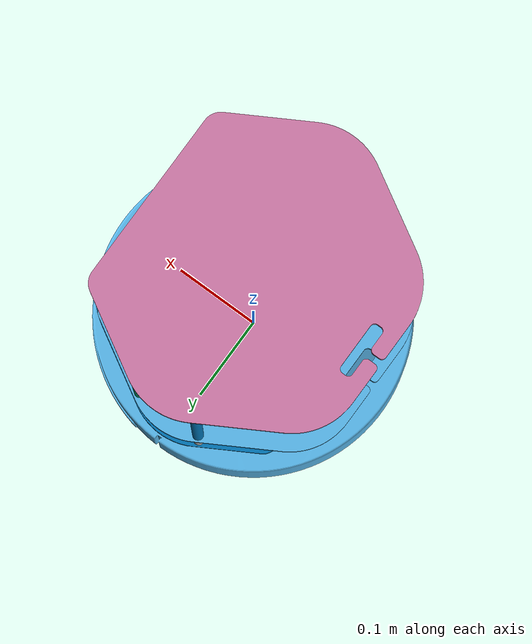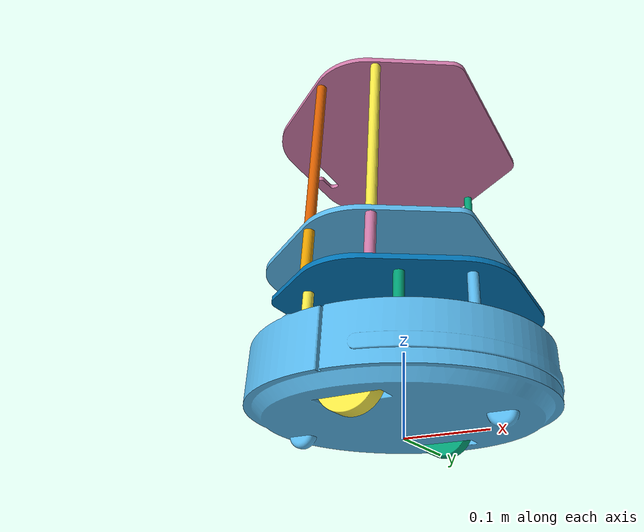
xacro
<?xml version="1.0"?>

<robot name="turtlebot_system" xmlns:xacro="http://ros.org/wiki/xacro">

  <xacro:include filename="$(find turtlebot_description)/urdf/turtlebot_common_library.urdf.xacro" />
  <xacro:include filename="$(find kobuki_description)/urdf/kobuki.urdf.xacro" />
  <xacro:include filename="$(find turtlebot_description)/urdf/stacks/hexagons.urdf.xacro"/>
  <xacro:include filename="$(find turtlebot_description)/urdf/lidar.xacro"/>

  <xacro:kobuki/>
  <xacro:stack_hexagons parent="base_link"/>
  <xacro:rplidar/>

  <gazebo>
    <plugin filename="libignition-gazebo-joint-state-publisher-system.so"
      name="ignition::gazebo::systems::JointStatePublisher"/>

      <plugin filename="ignition-gazebo-sensors-system"
        name="ignition::gazebo::systems::Sensors">
      </plugin>
  </gazebo>
</robot>

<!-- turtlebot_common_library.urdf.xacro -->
<!--
  The common turtlebot library of xacros for easy reference
 -->
<robot xmlns:xacro="http://ros.org/wiki/xacro">
  <!-- General -->
  <xacro:include filename="$(find turtlebot_description)/urdf/common_properties.urdf.xacro"/>
</robot>

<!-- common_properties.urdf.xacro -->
<robot name="xacro_properties" xmlns:xacro="http://ros.org/wiki/xacro">
  <xacro:property name="M_PI" value="3.1415926535897931" />
  <xacro:property name="material_white">
    <material name="white">
      <color rgba="1 1 1 1"/>
    </material>
  </xacro:property>
  <xacro:property name="material_grey">
    <material name="grey">
      <color rgba="0.5 0.5 0.5 1"/>
    </material>
  </xacro:property>
  <xacro:property name="material_light_grey">
    <material name="light_grey">
      <color rgba="0.6 0.6 0.6 1"/>
    </material>
  </xacro:property>
  <xacro:property name="material_dark_grey">
    <material name="dark_grey">
      <color rgba="0.3 0.3 0.3 1"/>
    </material>
  </xacro:property>
  <xacro:property name="material_black">
    <material name="black">
      <color rgba="0.1 0.1 0.1 1"/>
    </material>
  </xacro:property>
  <xacro:property name="material_red">
    <material name="red">
      <color rgba="1 0 0 1"/>
    </material>
  </xacro:property>
  <xacro:property name="material_green">
    <material name="green">
      <color rgba="0.0 0.8 0.0 1"/>
    </material>
  </xacro:property>
  <xacro:property name="material_blue">
    <material name="blue">
      <color rgba="0.0 0.0 1.0 1"/>
    </material>
  </xacro:property>
  <xacro:property name="material_grey_blue">
    <material name="grey_blue">
      <color rgba="0.4 0.4 1.0 1"/>
    </material>
  </xacro:property>
  <xacro:property name="material_orange">
    <material name="orange">
      <color rgba="1.0 0.7 0.0 1"/>
    </material>
  </xacro:property>
</robot>

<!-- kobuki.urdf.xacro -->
<robot name="kobuki" xmlns:xacro="http://ros.org/wiki/xacro">
  <xacro:include filename="$(find kobuki_description)/urdf/common_properties.urdf.xacro"/>
  <xacro:include filename="$(find kobuki_description)/urdf/drive_gazebo.xacro"/>

  <!-- Xacro properties -->
  <xacro:property name="M_SCALE" value="0.001"/>

  <!-- Kobuki -->
  <xacro:macro name="kobuki">
    <link name="base_footprint"/>
    <joint name="base_joint" type="fixed">
      <origin xyz="0 0 0.0102" rpy="0 0 0" />
      <parent link="base_footprint"/>
      <child link="base_link" />
    </joint>
    <link name="base_link">
      <visual>
        <geometry>
          <!-- new mesh -->
          <mesh filename="file://$(find kobuki_description)/meshes/main_body.dae"/>
        </geometry>
        <origin xyz="0.001 0 0.05199" rpy="0 0 0"/>
      </visual>
      <collision>
        <geometry>
          <mesh filename="file://$(find kobuki_description)/meshes/main_body.dae"/>
        </geometry>
        <origin xyz="0.0 0 0.05949" rpy="0 0 0"/>
      </collision>
      <inertial>
        <mass value="6.5"/> <!-- 2.4/2.6 kg for small/big battery pack -->
        <origin xyz="0 0 0"/>
        <inertia ixx="0.0001" ixy="0.0" ixz="0.0"
                 iyy="0.0001" iyz="0.0"
                 izz="0.0001" />
      </inertial>
    </link>

    <joint name="wheel_left_joint" type="continuous">
      <parent link="base_link"/>
      <child link="wheel_left_link"/>
      <origin xyz="0.00 ${0.23/2} 0.0250" rpy="${-M_PI/2} 0 0"/>
      <axis xyz="0 0 1"/>
    </joint>
    <link name="wheel_left_link">
      <visual>
        <geometry>
          <mesh filename="file://$(find kobuki_description)/meshes/wheel.dae"/>
        </geometry>
        <origin xyz="0 0 0" rpy="0 0 0"/>
      </visual>
      <collision>
        <geometry>
          <mesh filename="file://$(find kobuki_description)/meshes/wheel.dae"/>
        </geometry>
        <origin rpy="0 0 0" xyz="0 0 0"/>
      </collision>
      <inertial>
        <mass value="0.05" />
        <origin xyz="0 0 0" />
        <inertia ixx="0.001" ixy="0.0" ixz="0.0"
                 iyy="0.001" iyz="0.0"
                 izz="0.001" />
      </inertial>
    </link>

    <joint name="wheel_right_joint" type="continuous">
      <parent link="base_link"/>
      <child link="wheel_right_link"/>
      <origin xyz="0.00 -${0.23/2} 0.0250" rpy="${-M_PI/2} 0 0"/>
      <axis xyz="0 0 1"/>
    </joint>
    <link name="wheel_right_link">
      <visual>
        <geometry>
          <mesh filename="file://$(find kobuki_description)/meshes/wheel.dae"/>
        </geometry>
        <origin xyz="0 0 0" rpy="0 0 0"/>
      </visual>
      <collision>
        <geometry>
          <mesh filename="file://$(find kobuki_description)/meshes/wheel.dae"/>
        </geometry>
        <origin rpy="0 0 0" xyz="0 0 0"/>
      </collision>
      <inertial>
        <mass value="0.05" />
        <origin xyz="0 0 0" />
        <inertia ixx="0.001" ixy="0.0" ixz="0.0"
                 iyy="0.001" iyz="0.0"
                 izz="0.001" />
      </inertial>
    </link>

    <joint name="caster_front_joint" type="fixed">
      <parent link="base_link"/>
      <child link="caster_front_link"/>
      <origin xyz="0.115 0.0 0.007" rpy="${-M_PI/2} 0 0"/>
    </joint>
    <link name="caster_front_link">
      <collision>
        <geometry>
          <cylinder length="0.0176" radius="0.017"/>
        </geometry>
        <origin rpy="0 0 0" xyz="0 0 0"/>
      </collision>
      <inertial>
        <mass value="0.05" />
        <origin xyz="0 0 0" />
        <inertia ixx="0.001" ixy="0.0" ixz="0.0"
                 iyy="0.001" iyz="0.0"
                 izz="0.001" />
      </inertial>
    </link>

    <joint name="caster_back_joint" type="fixed">
      <parent link="base_link"/>
      <child link="caster_back_link"/>
      <origin xyz="-0.135 0.0 0.009" rpy="${-M_PI/2} 0 0"/>
    </joint>
    <link name="caster_back_link">
      <collision>
        <geometry>
          <cylinder length="0.0176" radius="0.017"/>
        </geometry>
        <origin rpy="0 0 0" xyz="0 0 0"/>
      </collision>
      <inertial>
        <mass value="0.05" />
        <origin xyz="0 0 0" />
        <inertia ixx="0.001" ixy="0.0" ixz="0.0"
                 iyy="0.001" iyz="0.0"
                 izz="0.001" />
      </inertial>
    </link>

    <xacro:drive_gazebo/>

  </xacro:macro>
</robot>

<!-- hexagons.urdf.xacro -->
<!--
  Hexagon stacks
 -->
<robot name="stack_hexagons" xmlns:xacro="http://ros.org/wiki/xacro">
  <xacro:include filename="$(find turtlebot_description)/urdf/common_properties.urdf.xacro"/>

  <!-- Xacro properties -->
  <xacro:property name="M_SCALE" value="0.001"/>

  <!-- Xacro macros -->
  <!-- Pole macros -->
  <xacro:macro name="stack_bottom_pole" params="parent number x_loc y_loc z_loc roll=0.0 pitch=0.0 yaw=0.0">
    <joint name="pole_bottom_${number}_joint" type="fixed">
      <origin xyz="${x_loc} ${y_loc} ${z_loc}" rpy="${roll} ${pitch} ${yaw}"/>
      <parent link="${parent}"/>
      <child link="pole_bottom_${number}_link"/>
    </joint>
    <link name="pole_bottom_${number}_link">
      <visual>
        <origin xyz="0 0 0" rpy="0 0 0"/>
        <geometry>
          <mesh filename="file://$(find turtlebot_description)/meshes/stacks/hexagons/pole_bottom.dae"/>
        </geometry>
      </visual>
      <collision>
        <origin xyz="0 0 0" rpy="0 0 0"/>
        <geometry>
          <mesh filename="file://$(find turtlebot_description)/meshes/stacks/hexagons/pole_bottom.dae"/>
        </geometry>
      </collision>
      <inertial>
        <mass value="0.008"/>
        <origin xyz="0 0 0" rpy="0 0 0"/>
        <inertia ixx="0.000001686" ixy="0.0" ixz="0.0"
                 iyy="0.000001686" iyz="0.0"
                 izz="0.000000144"/>
      </inertial>
    </link>
  </xacro:macro>

  <xacro:macro name="stack_middle_pole" params="parent number x_loc y_loc z_loc roll=0.0 pitch=0.0 yaw=0.0">
    <joint name="pole_middle_${number}_joint" type="fixed">
      <origin xyz="${x_loc} ${y_loc} ${z_loc}" rpy="${roll} ${pitch} ${yaw}" />
      <parent link="${parent}"/>
      <child link="pole_middle_${number}_link"/>
    </joint>
    <link name="pole_middle_${number}_link">
      <visual>
        <origin xyz="0 0 0" rpy="0 ${M_PI} 0"/>
        <geometry>
          <mesh filename="file://$(find turtlebot_description)/meshes/stacks/hexagons/pole_middle.dae"/>
        </geometry>
      </visual>
      <collision>
        <origin xyz="0 0 0" rpy="0 0 0"/>
        <geometry>
           <mesh filename="file://$(find turtlebot_description)/meshes/stacks/hexagons/pole_middle.dae"/>
        </geometry>
      </collision>
      <inertial>
        <mass value="0.012"/>
        <origin xyz="0 0 0"/>
        <inertia ixx="0.000003805" ixy="0.0" ixz="0.0"
                 iyy="0.000003805" iyz="0.0"
                 izz="0.000000216"/>
      </inertial>
    </link>
  </xacro:macro>

  <xacro:macro name="stack_top_pole" params="parent number x_loc y_loc z_loc roll=0.0 pitch=0.0 yaw=0.0">
    <joint name="pole_top_${number}_joint" type="fixed">
      <origin xyz="${x_loc} ${y_loc} ${z_loc}" rpy="${roll} ${pitch} ${yaw}"/>
      <parent link="${parent}"/>
      <child link="pole_top_${number}_link"/>
    </joint>
    <link name="pole_top_${number}_link">
      <visual>
        <origin xyz=" 0 0 0" rpy="0 0 0"/>
        <geometry>
          <mesh filename="file://$(find turtlebot_description)/meshes/stacks/hexagons/pole_top.dae"/>
        </geometry>
      </visual>
      <collision>
        <origin xyz="0 0 0" rpy="0 0 0"/>
        <geometry>
           <mesh filename="file://$(find turtlebot_description)/meshes/stacks/hexagons/pole_top.dae"/>
        </geometry>
      </collision>
      <inertial>
        <mass value="0.060"/>
        <origin xyz="0 0 0"/>
        <inertia ixx="0.000206991" ixy="0.0" ixz="0.0"
                 iyy="0.000206991" iyz="0.0"
                 izz="0.000001080"/>
      </inertial>
    </link>
  </xacro:macro>

  <xacro:macro name="stack_hexagons" params="parent">
    <xacro:stack_bottom_pole parent="${parent}" number="0" x_loc= "0.120" y_loc= "0.082" z_loc="0.1028"/>
    <xacro:stack_bottom_pole parent="${parent}" number="1" x_loc= "0.055" y_loc= "0.120" z_loc="0.1028"/>
    <xacro:stack_bottom_pole parent="${parent}" number="2" x_loc="-0.055" y_loc= "0.120" z_loc="0.1028"/>
    <xacro:stack_bottom_pole parent="${parent}" number="3" x_loc= "0.120" y_loc="-0.082" z_loc="0.1028"/>
    <xacro:stack_bottom_pole parent="${parent}" number="4" x_loc= "0.055" y_loc="-0.120" z_loc="0.1028"/>
    <xacro:stack_bottom_pole parent="${parent}" number="5" x_loc="-0.055" y_loc="-0.120" z_loc="0.1028"/>

    <joint name="plate_bottom_joint" type="fixed">
      <origin xyz="0.02364 0.0 0.1306" rpy="0 0 0"/>
      <parent link="${parent}"/>
      <child link="plate_bottom_link"/>
    </joint>
    <link name="plate_bottom_link">
      <visual>
        <origin xyz="0 0 0" rpy="0 0 0"/>
        <geometry>
          <mesh filename="file://$(find turtlebot_description)/meshes/stacks/hexagons/plate_bottom.dae"/>
        </geometry>
      </visual>
      <collision>
        <origin xyz="-0.02364 0 0" rpy="0 0 0"/>
        <geometry>
           <mesh filename="file://$(find turtlebot_description)/meshes/stacks/hexagons/plate_bottom.dae"/>
        </geometry>
      </collision>
      <inertial>
        <mass value="0.520" />
        <origin xyz="0 0 0" />
        <inertia ixx="0.003328" ixy="0.0" ixz="0.0"
                 iyy="0.003328" iyz="0.0"
                 izz="0.006656" />
      </inertial>
    </link>

    <xacro:stack_middle_pole parent="${parent}" number="0" x_loc= "0.0381" y_loc= "0.1505" z_loc="0.1640"/>
    <xacro:stack_middle_pole parent="${parent}" number="1" x_loc= "0.0381" y_loc="-0.1505" z_loc="0.1640"/>
    <xacro:stack_middle_pole parent="${parent}" number="2" x_loc="-0.0381" y_loc= "0.1505" z_loc="0.1640"/>
    <xacro:stack_middle_pole parent="${parent}" number="3" x_loc="-0.0381" y_loc="-0.1505" z_loc="0.1640"/>

    <joint name="plate_middle_joint" type="fixed">
      <origin xyz="-0.01364 0.0 0.1874" rpy="0 0 0"/>
      <parent link="${parent}"/>
      <child link="plate_middle_link"/>
    </joint>
    <link name="plate_middle_link">
      <visual>
        <origin xyz="0 0 0" rpy="0 0 0"/>
        <geometry>
          <mesh filename="file://$(find turtlebot_description)/meshes/stacks/hexagons/plate_middle.dae"/>
        </geometry>
      </visual>
      <collision>
        <origin xyz="0.01364 0.0 0.0" rpy="0 0 0"/>
        <geometry>
          <mesh filename="file://$(find turtlebot_description)/meshes/stacks/hexagons/plate_simple.stl"
                scale="${M_SCALE} ${M_SCALE} ${M_SCALE}"/>
        </geometry>
      </collision>
      <inertial>
        <mass value="0.520" />
        <origin xyz="0 0 0" />
        <inertia ixx="0.003328" ixy="0.0" ixz="0.0"
                 iyy="0.003328" iyz="0.0"
                 izz="0.006656" />
      </inertial>
    </link>

    <xacro:stack_top_pole parent="${parent}" number="0" x_loc= "0.0381" y_loc= "0.1505" z_loc="0.2920"/>
    <xacro:stack_top_pole parent="${parent}" number="1" x_loc= "0.0381" y_loc="-0.1505" z_loc="0.2920"/>
    <xacro:stack_top_pole parent="${parent}" number="2" x_loc="-0.0381" y_loc= "0.1505" z_loc="0.2920"/>
    <xacro:stack_top_pole parent="${parent}" number="3" x_loc="-0.0381" y_loc="-0.1505" z_loc="0.2920"/>

    <joint name="plate_top_joint" type="fixed">
      <origin xyz="-0.01364 0.0  0.3966" rpy="0 0 0"/>
      <parent link="${parent}"/>
      <child link="plate_top_link"/>
    </joint>
    <link name="plate_top_link">
      <visual>
        <origin xyz="0 0 0" rpy="0 0 0"/>
        <geometry>
          <mesh filename="file://$(find turtlebot_description)/meshes/stacks/hexagons/plate_top.dae"/>
        </geometry>
      </visual>
      <collision>
        <origin xyz="0.01364 0 0" rpy="0 0 0"/>
        <geometry>
          <mesh filename="file://$(find turtlebot_description)/meshes/stacks/hexagons/plate_simple.stl"
                scale="${M_SCALE} ${M_SCALE} ${M_SCALE}"/>
        </geometry>
      </collision>
      <inertial>
        <mass value="0.520"/>
        <origin xyz="0 0 0"/>
        <inertia ixx="0.003328" ixy="0.0" ixz="0.0"
                 iyy="0.003328" iyz="0.0"
                 izz="0.006656" />
      </inertial>
    </link>
  </xacro:macro>
</robot>

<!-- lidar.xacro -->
<robot xmlns:xacro="http://www.ros.org/wiki/xacro" name="lidar">

    <xacro:macro name="rplidar">

        <link name="laser"/>

        <joint name="lidar_joint" type="fixed">
            <origin xyz = "0 0 0.1"/>
            <parent link="plate_middle_link"/>
            <child link="laser"/>
        </joint>

        <gazebo reference="laser">
            <sensor type="gpu_lidar" name="rplidar">
                <update_rate>100</update_rate>
                <always_on>1</always_on>
                <visualize>true</visualize>
                <topic>lidar</topic>
                <ignition_frame_id>laser</ignition_frame_id>
                <lidar>
                    <scan>
                        <horizontal>
                            <samples>720</samples>
                            <resolution>1</resolution>
                            <min_angle>-3.1415926</min_angle>
                            <max_angle>3.1415926</max_angle>
                        </horizontal>
                    </scan>
                    <range>
                        <min>0.18</min>
                        <max>12</max>
                    </range>
                </lidar>
            </sensor>

        </gazebo>

    </xacro:macro>
</robot>
